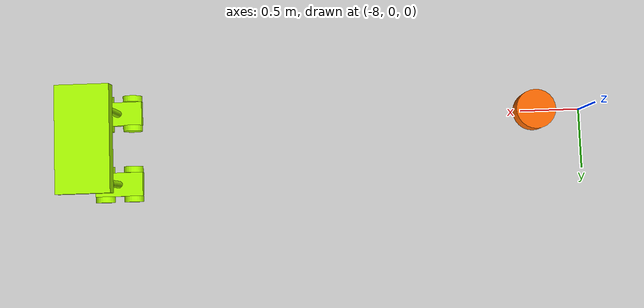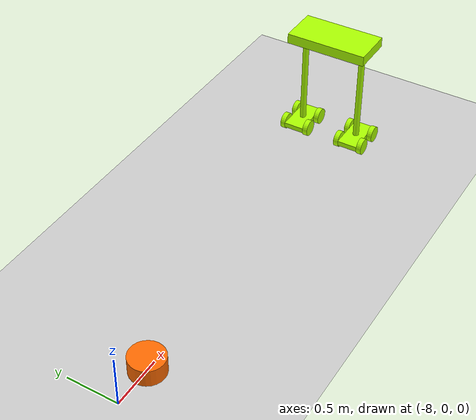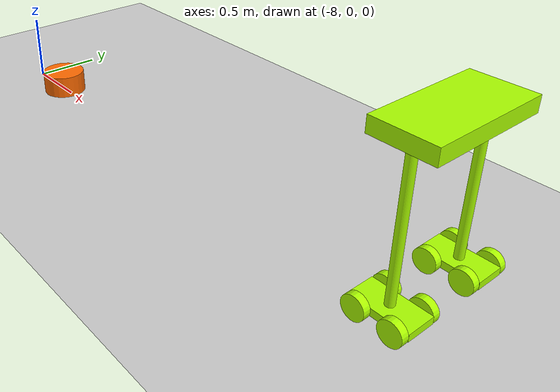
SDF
<sdf version="1.6">
 <world name="default">
  <model name="ground_plane">
   <static>1</static>
   <link name="link">
    <collision name="collision">
     <geometry><plane><normal>0 0 1</normal><size>100 100</size></plane></geometry>
     <surface><friction><ode><mu>100</mu><mu2>50</mu2></ode></friction></surface>
    </collision>
    <visual name="visual">
     <cast_shadows>0</cast_shadows>
     <geometry><plane><normal>0 0 1</normal><size>100 100</size></plane></geometry>
     <material>
      <script><uri>file://media/materials/scripts/gazebo.material</uri><name>Gazebo/Grey</name></script>
     </material>
    </visual>
   </link>
  </model>
  <model name="cylinder_or">
   <link name="link_0">
    <inertial>
     <mass>1</mass>
     <inertia><ixx>0.145833</ixx><ixy>0</ixy><ixz>0</ixz><iyy>0.145833</iyy><iyz>0</iyz><izz>0.125</izz></inertia>
    </inertial>
    <visual name="visual">
     <geometry><cylinder><radius>0.166667</radius><length>0.333333</length></cylinder></geometry>
     <material>
      <lighting>1</lighting>
      <script><uri>file://media/materials/scripts/gazebo.material</uri><name>Gazebo/Grey</name></script>
      <ambient>1 0.416 0 1</ambient>
      <diffuse>1 0.416 0 1</diffuse>
      <specular>0 0 0 1</specular>
      <emissive>0 0 0 1</emissive>
      <shader type="vertex"><normal_map>__default__</normal_map></shader>
     </material>
    </visual>
    <collision name="collision">
     <geometry><cylinder><radius>0.166667</radius><length>0.333333</length></cylinder></geometry>
     <surface>
      <friction>
       <ode><mu>1</mu><mu2>1</mu2><fdir1>0 0 0</fdir1><slip1>0</slip1><slip2>0</slip2></ode>
       <torsional>
        <coefficient>1</coefficient>
        <patch_radius>0</patch_radius>
        <surface_radius>0</surface_radius>
        <use_patch_radius>1</use_patch_radius>
        <ode><slip>0</slip></ode>
       </torsional>
      </friction>
      <bounce><restitution_coefficient>0</restitution_coefficient><threshold>1e+06</threshold></bounce>
      <contact>
       <collide_without_contact>0</collide_without_contact>
       <collide_without_contact_bitmask>1</collide_without_contact_bitmask>
       <collide_bitmask>1</collide_bitmask>
       <ode>
        <soft_cfm>0</soft_cfm>
        <soft_erp>0.2</soft_erp>
        <kp>1e+13</kp>
        <kd>1</kd>
        <max_vel>0.01</max_vel>
        <min_depth>0</min_depth>
       </ode>
       <bullet>
        <split_impulse>1</split_impulse>
        <split_impulse_penetration_threshold>-0.01</split_impulse_penetration_threshold>
        <soft_cfm>0</soft_cfm>
        <soft_erp>0.2</soft_erp>
        <kp>1e+13</kp>
        <kd>1</kd>
       </bullet>
      </contact>
     </surface>
    </collision>
   </link>
   <static>1</static>
   <pose>-7.6 0 0 0 -0 0</pose>
  </model>
  <model name="myRobot">
   <link name="link_0">
    <pose>0 -0.3 -0.151923 0 -0 0</pose>
    <inertial>
     <mass>1</mass>
     <inertia>
      <ixx>0.166667</ixx>
      <ixy>0</ixy>
      <ixz>0</ixz>
      <iyy>0.166667</iyy>
      <iyz>0</iyz>
      <izz>0.166667</izz>
     </inertia>
    </inertial>
    <visual name="visual">
     <geometry><box><size>0.4 0.2 0.05</size></box></geometry>
     <material>
      <lighting>1</lighting>
      <script><uri>file://media/materials/scripts/gazebo.material</uri><name>Gazebo/Grey</name></script>
      <ambient>0.675 1 0 1</ambient>
      <diffuse>0.675 1 0 1</diffuse>
      <specular>0.01 0.01 0.01 1</specular>
      <emissive>0 0 0 1</emissive>
      <shader type="vertex"><normal_map>__default__</normal_map></shader>
     </material>
    </visual>
    <collision name="collision">
     <geometry><box><size>0.4 0.2 0.05</size></box></geometry>
     <surface>
      <friction>
       <ode><mu>1</mu><mu2>1</mu2><fdir1>0 0 0</fdir1><slip1>0</slip1><slip2>0</slip2></ode>
       <torsional>
        <coefficient>1</coefficient>
        <patch_radius>0</patch_radius>
        <surface_radius>0</surface_radius>
        <use_patch_radius>1</use_patch_radius>
        <ode><slip>0</slip></ode>
       </torsional>
      </friction>
      <bounce><restitution_coefficient>0</restitution_coefficient><threshold>1e+06</threshold></bounce>
      <contact>
       <collide_without_contact>0</collide_without_contact>
       <collide_without_contact_bitmask>1</collide_without_contact_bitmask>
       <collide_bitmask>1</collide_bitmask>
       <ode>
        <soft_cfm>0</soft_cfm>
        <soft_erp>0.2</soft_erp>
        <kp>1e+13</kp>
        <kd>1</kd>
        <max_vel>0.01</max_vel>
        <min_depth>0</min_depth>
       </ode>
       <bullet>
        <split_impulse>1</split_impulse>
        <split_impulse_penetration_threshold>-0.01</split_impulse_penetration_threshold>
        <soft_cfm>0</soft_cfm>
        <soft_erp>0.2</soft_erp>
        <kp>1e+13</kp>
        <kd>1</kd>
       </bullet>
      </contact>
     </surface>
    </collision>
   </link>
   <link name="link_0_clone">
    <pose>0 0.3 -0.151923 0 -0 0</pose>
    <inertial>
     <mass>1</mass>
     <inertia>
      <ixx>0.166667</ixx>
      <ixy>0</ixy>
      <ixz>0</ixz>
      <iyy>0.166667</iyy>
      <iyz>0</iyz>
      <izz>0.166667</izz>
     </inertia>
    </inertial>
    <visual name="visual">
     <geometry><box><size>0.4 0.2 0.05</size></box></geometry>
     <material>
      <lighting>1</lighting>
      <script><uri>file://media/materials/scripts/gazebo.material</uri><name>Gazebo/Grey</name></script>
      <ambient>0.675 1 0 1</ambient>
      <diffuse>0.675 1 0 1</diffuse>
      <specular>0.01 0.01 0.01 1</specular>
      <emissive>0 0 0 1</emissive>
      <shader type="vertex"><normal_map>__default__</normal_map></shader>
     </material>
    </visual>
    <collision name="collision">
     <geometry><box><size>0.4 0.2 0.05</size></box></geometry>
     <surface>
      <friction>
       <ode><mu>1</mu><mu2>1</mu2><fdir1>0 0 0</fdir1><slip1>0</slip1><slip2>0</slip2></ode>
       <torsional>
        <coefficient>1</coefficient>
        <patch_radius>0</patch_radius>
        <surface_radius>0</surface_radius>
        <use_patch_radius>1</use_patch_radius>
        <ode><slip>0</slip></ode>
       </torsional>
      </friction>
      <bounce><restitution_coefficient>0</restitution_coefficient><threshold>1e+06</threshold></bounce>
      <contact>
       <collide_without_contact>0</collide_without_contact>
       <collide_without_contact_bitmask>1</collide_without_contact_bitmask>
       <collide_bitmask>1</collide_bitmask>
       <ode>
        <soft_cfm>0</soft_cfm>
        <soft_erp>0.2</soft_erp>
        <kp>1e+13</kp>
        <kd>1</kd>
        <max_vel>0.01</max_vel>
        <min_depth>0</min_depth>
       </ode>
       <bullet>
        <split_impulse>1</split_impulse>
        <split_impulse_penetration_threshold>-0.01</split_impulse_penetration_threshold>
        <soft_cfm>0</soft_cfm>
        <soft_erp>0.2</soft_erp>
        <kp>1e+13</kp>
        <kd>1</kd>
       </bullet>
      </contact>
     </surface>
    </collision>
   </link>
   <link name="link_1">
    <pose>0 -0.3 0.323077 0 -0 0</pose>
    <inertial>
     <mass>1</mass>
     <inertia><ixx>0.145833</ixx><ixy>0</ixy><ixz>0</ixz><iyy>0.145833</iyy><iyz>0</iyz><izz>0.125</izz></inertia>
    </inertial>
    <visual name="visual">
     <geometry><cylinder><radius>0.03</radius><length>1</length></cylinder></geometry>
     <material>
      <lighting>1</lighting>
      <script><uri>file://media/materials/scripts/gazebo.material</uri><name>Gazebo/Grey</name></script>
      <ambient>0.675 1 0 1</ambient>
      <diffuse>0.675 1 0 1</diffuse>
      <specular>0.01 0.01 0.01 1</specular>
      <emissive>0 0 0 1</emissive>
      <shader type="vertex"><normal_map>__default__</normal_map></shader>
     </material>
    </visual>
    <collision name="collision">
     <geometry><cylinder><radius>0.03</radius><length>1</length></cylinder></geometry>
     <surface>
      <friction>
       <ode><mu>1</mu><mu2>1</mu2><fdir1>0 0 0</fdir1><slip1>0</slip1><slip2>0</slip2></ode>
       <torsional>
        <coefficient>1</coefficient>
        <patch_radius>0</patch_radius>
        <surface_radius>0</surface_radius>
        <use_patch_radius>1</use_patch_radius>
        <ode><slip>0</slip></ode>
       </torsional>
      </friction>
      <bounce><restitution_coefficient>0</restitution_coefficient><threshold>1e+06</threshold></bounce>
      <contact>
       <collide_without_contact>0</collide_without_contact>
       <collide_without_contact_bitmask>1</collide_without_contact_bitmask>
       <collide_bitmask>1</collide_bitmask>
       <ode>
        <soft_cfm>0</soft_cfm>
        <soft_erp>0.2</soft_erp>
        <kp>1e+13</kp>
        <kd>1</kd>
        <max_vel>0.01</max_vel>
        <min_depth>0</min_depth>
       </ode>
       <bullet>
        <split_impulse>1</split_impulse>
        <split_impulse_penetration_threshold>-0.01</split_impulse_penetration_threshold>
        <soft_cfm>0</soft_cfm>
        <soft_erp>0.2</soft_erp>
        <kp>1e+13</kp>
        <kd>1</kd>
       </bullet>
      </contact>
     </surface>
    </collision>
   </link>
   <link name="link_1_clone">
    <pose>0 0.3 0.323077 0 -0 0</pose>
    <inertial>
     <mass>1</mass>
     <inertia><ixx>0.145833</ixx><ixy>0</ixy><ixz>0</ixz><iyy>0.145833</iyy><iyz>0</iyz><izz>0.125</izz></inertia>
    </inertial>
    <visual name="visual">
     <geometry><cylinder><radius>0.03</radius><length>1</length></cylinder></geometry>
     <material>
      <lighting>1</lighting>
      <script><uri>file://media/materials/scripts/gazebo.material</uri><name>Gazebo/Grey</name></script>
      <ambient>0.675 1 0 1</ambient>
      <diffuse>0.675 1 0 1</diffuse>
      <specular>0.01 0.01 0.01 1</specular>
      <emissive>0 0 0 1</emissive>
      <shader type="vertex"><normal_map>__default__</normal_map></shader>
     </material>
    </visual>
    <collision name="collision">
     <geometry><cylinder><radius>0.03</radius><length>1</length></cylinder></geometry>
     <surface>
      <friction>
       <ode><mu>1</mu><mu2>1</mu2><fdir1>0 0 0</fdir1><slip1>0</slip1><slip2>0</slip2></ode>
       <torsional>
        <coefficient>1</coefficient>
        <patch_radius>0</patch_radius>
        <surface_radius>0</surface_radius>
        <use_patch_radius>1</use_patch_radius>
        <ode><slip>0</slip></ode>
       </torsional>
      </friction>
      <bounce><restitution_coefficient>0</restitution_coefficient><threshold>1e+06</threshold></bounce>
      <contact>
       <collide_without_contact>0</collide_without_contact>
       <collide_without_contact_bitmask>1</collide_without_contact_bitmask>
       <collide_bitmask>1</collide_bitmask>
       <ode>
        <soft_cfm>0</soft_cfm>
        <soft_erp>0.2</soft_erp>
        <kp>1e+13</kp>
        <kd>1</kd>
        <max_vel>0.01</max_vel>
        <min_depth>0</min_depth>
       </ode>
       <bullet>
        <split_impulse>1</split_impulse>
        <split_impulse_penetration_threshold>-0.01</split_impulse_penetration_threshold>
        <soft_cfm>0</soft_cfm>
        <soft_erp>0.2</soft_erp>
        <kp>1e+13</kp>
        <kd>1</kd>
       </bullet>
      </contact>
     </surface>
    </collision>
   </link>
   <link name="link_2">
    <pose>0 -0 0.873077 0 -0 0</pose>
    <inertial>
     <mass>1</mass>
     <inertia>
      <ixx>0.166667</ixx>
      <ixy>0</ixy>
      <ixz>0</ixz>
      <iyy>0.166667</iyy>
      <iyz>0</iyz>
      <izz>0.166667</izz>
     </inertia>
    </inertial>
    <visual name="visual">
     <geometry><box><size>0.4 0.8 0.1</size></box></geometry>
     <material>
      <lighting>1</lighting>
      <script><uri>file://media/materials/scripts/gazebo.material</uri><name>Gazebo/Grey</name></script>
      <ambient>0.675 1 0 1</ambient>
      <diffuse>0.675 1 0 1</diffuse>
      <specular>0.01 0.01 0.01 1</specular>
      <emissive>0 0 0 1</emissive>
      <shader type="vertex"><normal_map>__default__</normal_map></shader>
     </material>
    </visual>
    <collision name="collision">
     <geometry><box><size>0.4 0.8 0.1</size></box></geometry>
     <surface>
      <friction>
       <ode><mu>1</mu><mu2>1</mu2><fdir1>0 0 0</fdir1><slip1>0</slip1><slip2>0</slip2></ode>
       <torsional>
        <coefficient>1</coefficient>
        <patch_radius>0</patch_radius>
        <surface_radius>0</surface_radius>
        <use_patch_radius>1</use_patch_radius>
        <ode><slip>0</slip></ode>
       </torsional>
      </friction>
      <bounce><restitution_coefficient>0</restitution_coefficient><threshold>1e+06</threshold></bounce>
      <contact>
       <collide_without_contact>0</collide_without_contact>
       <collide_without_contact_bitmask>1</collide_without_contact_bitmask>
       <collide_bitmask>1</collide_bitmask>
       <ode>
        <soft_cfm>0</soft_cfm>
        <soft_erp>0.2</soft_erp>
        <kp>1e+13</kp>
        <kd>1</kd>
        <max_vel>0.01</max_vel>
        <min_depth>0</min_depth>
       </ode>
       <bullet>
        <split_impulse>1</split_impulse>
        <split_impulse_penetration_threshold>-0.01</split_impulse_penetration_threshold>
        <soft_cfm>0</soft_cfm>
        <soft_erp>0.2</soft_erp>
        <kp>1e+13</kp>
        <kd>1</kd>
       </bullet>
      </contact>
     </surface>
    </collision>
   </link>
   <link name="link_3">
    <pose>-0.12 -0.425 -0.151923 1.5707 -0 0</pose>
    <inertial>
     <mass>1</mass>
     <inertia><ixx>0.145833</ixx><ixy>0</ixy><ixz>0</ixz><iyy>0.145833</iyy><iyz>0</iyz><izz>0.125</izz></inertia>
    </inertial>
    <visual name="visual">
     <geometry><cylinder><radius>0.08</radius><length>0.05</length></cylinder></geometry>
     <material>
      <lighting>1</lighting>
      <script><uri>file://media/materials/scripts/gazebo.material</uri><name>Gazebo/Grey</name></script>
      <ambient>0.675 1 0 1</ambient>
      <diffuse>0.675 1 0 1</diffuse>
      <specular>0.01 0.01 0.01 1</specular>
      <emissive>0 0 0 1</emissive>
      <shader type="vertex"><normal_map>__default__</normal_map></shader>
     </material>
    </visual>
    <collision name="collision">
     <geometry><cylinder><radius>0.08</radius><length>0.05</length></cylinder></geometry>
     <surface>
      <friction>
       <ode><mu>1</mu><mu2>1</mu2><fdir1>0 0 0</fdir1><slip1>0</slip1><slip2>0</slip2></ode>
       <torsional>
        <coefficient>1</coefficient>
        <patch_radius>0</patch_radius>
        <surface_radius>0</surface_radius>
        <use_patch_radius>1</use_patch_radius>
        <ode><slip>0</slip></ode>
       </torsional>
      </friction>
      <bounce><restitution_coefficient>0</restitution_coefficient><threshold>1e+06</threshold></bounce>
      <contact>
       <collide_without_contact>0</collide_without_contact>
       <collide_without_contact_bitmask>1</collide_without_contact_bitmask>
       <collide_bitmask>1</collide_bitmask>
       <ode>
        <soft_cfm>0</soft_cfm>
        <soft_erp>0.2</soft_erp>
        <kp>1e+13</kp>
        <kd>1</kd>
        <max_vel>0.01</max_vel>
        <min_depth>0</min_depth>
       </ode>
       <bullet>
        <split_impulse>1</split_impulse>
        <split_impulse_penetration_threshold>-0.01</split_impulse_penetration_threshold>
        <soft_cfm>0</soft_cfm>
        <soft_erp>0.2</soft_erp>
        <kp>1e+13</kp>
        <kd>1</kd>
       </bullet>
      </contact>
     </surface>
    </collision>
   </link>
   <link name="link_3_clone">
    <pose>0.12 -0.425 -0.151923 1.5707 -0 0</pose>
    <inertial>
     <mass>1</mass>
     <inertia><ixx>0.145833</ixx><ixy>0</ixy><ixz>0</ixz><iyy>0.145833</iyy><iyz>0</iyz><izz>0.125</izz></inertia>
    </inertial>
    <visual name="visual">
     <geometry><cylinder><radius>0.08</radius><length>0.05</length></cylinder></geometry>
     <material>
      <lighting>1</lighting>
      <script><uri>file://media/materials/scripts/gazebo.material</uri><name>Gazebo/Grey</name></script>
      <ambient>0.675 1 0 1</ambient>
      <diffuse>0.675 1 0 1</diffuse>
      <specular>0.01 0.01 0.01 1</specular>
      <emissive>0 0 0 1</emissive>
      <shader type="vertex"><normal_map>__default__</normal_map></shader>
     </material>
    </visual>
    <collision name="collision">
     <geometry><cylinder><radius>0.08</radius><length>0.05</length></cylinder></geometry>
     <surface>
      <friction>
       <ode><mu>1</mu><mu2>1</mu2><fdir1>0 0 0</fdir1><slip1>0</slip1><slip2>0</slip2></ode>
       <torsional>
        <coefficient>1</coefficient>
        <patch_radius>0</patch_radius>
        <surface_radius>0</surface_radius>
        <use_patch_radius>1</use_patch_radius>
        <ode><slip>0</slip></ode>
       </torsional>
      </friction>
      <bounce><restitution_coefficient>0</restitution_coefficient><threshold>1e+06</threshold></bounce>
      <contact>
       <collide_without_contact>0</collide_without_contact>
       <collide_without_contact_bitmask>1</collide_without_contact_bitmask>
       <collide_bitmask>1</collide_bitmask>
       <ode>
        <soft_cfm>0</soft_cfm>
        <soft_erp>0.2</soft_erp>
        <kp>1e+13</kp>
        <kd>1</kd>
        <max_vel>0.01</max_vel>
        <min_depth>0</min_depth>
       </ode>
       <bullet>
        <split_impulse>1</split_impulse>
        <split_impulse_penetration_threshold>-0.01</split_impulse_penetration_threshold>
        <soft_cfm>0</soft_cfm>
        <soft_erp>0.2</soft_erp>
        <kp>1e+13</kp>
        <kd>1</kd>
       </bullet>
      </contact>
     </surface>
    </collision>
   </link>
   <link name="link_3_clone_0">
    <pose>-0.12 -0.175 -0.151923 1.5707 -0 0</pose>
    <inertial>
     <mass>1</mass>
     <inertia><ixx>0.145833</ixx><ixy>0</ixy><ixz>0</ixz><iyy>0.145833</iyy><iyz>0</iyz><izz>0.125</izz></inertia>
    </inertial>
    <visual name="visual">
     <geometry><cylinder><radius>0.08</radius><length>0.05</length></cylinder></geometry>
     <material>
      <lighting>1</lighting>
      <script><uri>file://media/materials/scripts/gazebo.material</uri><name>Gazebo/Grey</name></script>
      <ambient>0.675 1 0 1</ambient>
      <diffuse>0.675 1 0 1</diffuse>
      <specular>0.01 0.01 0.01 1</specular>
      <emissive>0 0 0 1</emissive>
      <shader type="vertex"><normal_map>__default__</normal_map></shader>
     </material>
    </visual>
    <collision name="collision">
     <geometry><cylinder><radius>0.08</radius><length>0.05</length></cylinder></geometry>
     <surface>
      <friction>
       <ode><mu>1</mu><mu2>1</mu2><fdir1>0 0 0</fdir1><slip1>0</slip1><slip2>0</slip2></ode>
       <torsional>
        <coefficient>1</coefficient>
        <patch_radius>0</patch_radius>
        <surface_radius>0</surface_radius>
        <use_patch_radius>1</use_patch_radius>
        <ode><slip>0</slip></ode>
       </torsional>
      </friction>
      <bounce><restitution_coefficient>0</restitution_coefficient><threshold>1e+06</threshold></bounce>
      <contact>
       <collide_without_contact>0</collide_without_contact>
       <collide_without_contact_bitmask>1</collide_without_contact_bitmask>
       <collide_bitmask>1</collide_bitmask>
       <ode>
        <soft_cfm>0</soft_cfm>
        <soft_erp>0.2</soft_erp>
        <kp>1e+13</kp>
        <kd>1</kd>
        <max_vel>0.01</max_vel>
        <min_depth>0</min_depth>
       </ode>
       <bullet>
        <split_impulse>1</split_impulse>
        <split_impulse_penetration_threshold>-0.01</split_impulse_penetration_threshold>
        <soft_cfm>0</soft_cfm>
        <soft_erp>0.2</soft_erp>
        <kp>1e+13</kp>
        <kd>1</kd>
       </bullet>
      </contact>
     </surface>
    </collision>
   </link>
   <link name="link_3_clone_1">
    <pose>0.12 -0.175 -0.151923 1.5707 -0 0</pose>
    <inertial>
     <mass>1</mass>
     <inertia><ixx>0.145833</ixx><ixy>0</ixy><ixz>0</ixz><iyy>0.145833</iyy><iyz>0</iyz><izz>0.125</izz></inertia>
    </inertial>
    <visual name="visual">
     <geometry><cylinder><radius>0.08</radius><length>0.05</length></cylinder></geometry>
     <material>
      <lighting>1</lighting>
      <script><uri>file://media/materials/scripts/gazebo.material</uri><name>Gazebo/Grey</name></script>
      <ambient>0.675 1 0 1</ambient>
      <diffuse>0.675 1 0 1</diffuse>
      <specular>0.01 0.01 0.01 1</specular>
      <emissive>0 0 0 1</emissive>
      <shader type="vertex"><normal_map>__default__</normal_map></shader>
     </material>
    </visual>
    <collision name="collision">
     <geometry><cylinder><radius>0.08</radius><length>0.05</length></cylinder></geometry>
     <surface>
      <friction>
       <ode><mu>1</mu><mu2>1</mu2><fdir1>0 0 0</fdir1><slip1>0</slip1><slip2>0</slip2></ode>
       <torsional>
        <coefficient>1</coefficient>
        <patch_radius>0</patch_radius>
        <surface_radius>0</surface_radius>
        <use_patch_radius>1</use_patch_radius>
        <ode><slip>0</slip></ode>
       </torsional>
      </friction>
      <bounce><restitution_coefficient>0</restitution_coefficient><threshold>1e+06</threshold></bounce>
      <contact>
       <collide_without_contact>0</collide_without_contact>
       <collide_without_contact_bitmask>1</collide_without_contact_bitmask>
       <collide_bitmask>1</collide_bitmask>
       <ode>
        <soft_cfm>0</soft_cfm>
        <soft_erp>0.2</soft_erp>
        <kp>1e+13</kp>
        <kd>1</kd>
        <max_vel>0.01</max_vel>
        <min_depth>0</min_depth>
       </ode>
       <bullet>
        <split_impulse>1</split_impulse>
        <split_impulse_penetration_threshold>-0.01</split_impulse_penetration_threshold>
        <soft_cfm>0</soft_cfm>
        <soft_erp>0.2</soft_erp>
        <kp>1e+13</kp>
        <kd>1</kd>
       </bullet>
      </contact>
     </surface>
    </collision>
   </link>
   <link name="link_3_clone_2">
    <pose>-0.12 0.175 -0.151923 1.5707 -0 0</pose>
    <inertial>
     <mass>1</mass>
     <inertia><ixx>0.145833</ixx><ixy>0</ixy><ixz>0</ixz><iyy>0.145833</iyy><iyz>0</iyz><izz>0.125</izz></inertia>
    </inertial>
    <visual name="visual">
     <geometry><cylinder><radius>0.08</radius><length>0.05</length></cylinder></geometry>
     <material>
      <lighting>1</lighting>
      <script><uri>file://media/materials/scripts/gazebo.material</uri><name>Gazebo/Grey</name></script>
      <ambient>0.675 1 0 1</ambient>
      <diffuse>0.675 1 0 1</diffuse>
      <specular>0.01 0.01 0.01 1</specular>
      <emissive>0 0 0 1</emissive>
      <shader type="vertex"><normal_map>__default__</normal_map></shader>
     </material>
    </visual>
    <collision name="collision">
     <geometry><cylinder><radius>0.08</radius><length>0.05</length></cylinder></geometry>
     <surface>
      <friction>
       <ode><mu>1</mu><mu2>1</mu2><fdir1>0 0 0</fdir1><slip1>0</slip1><slip2>0</slip2></ode>
       <torsional>
        <coefficient>1</coefficient>
        <patch_radius>0</patch_radius>
        <surface_radius>0</surface_radius>
        <use_patch_radius>1</use_patch_radius>
        <ode><slip>0</slip></ode>
       </torsional>
      </friction>
      <bounce><restitution_coefficient>0</restitution_coefficient><threshold>1e+06</threshold></bounce>
      <contact>
       <collide_without_contact>0</collide_without_contact>
       <collide_without_contact_bitmask>1</collide_without_contact_bitmask>
       <collide_bitmask>1</collide_bitmask>
       <ode>
        <soft_cfm>0</soft_cfm>
        <soft_erp>0.2</soft_erp>
        <kp>1e+13</kp>
        <kd>1</kd>
        <max_vel>0.01</max_vel>
        <min_depth>0</min_depth>
       </ode>
       <bullet>
        <split_impulse>1</split_impulse>
        <split_impulse_penetration_threshold>-0.01</split_impulse_penetration_threshold>
        <soft_cfm>0</soft_cfm>
        <soft_erp>0.2</soft_erp>
        <kp>1e+13</kp>
        <kd>1</kd>
       </bullet>
      </contact>
     </surface>
    </collision>
   </link>
   <link name="link_3_clone_3">
    <pose>0.12 0.175 -0.151923 1.5707 -0 0</pose>
    <inertial>
     <mass>1</mass>
     <inertia><ixx>0.145833</ixx><ixy>0</ixy><ixz>0</ixz><iyy>0.145833</iyy><iyz>0</iyz><izz>0.125</izz></inertia>
    </inertial>
    <visual name="visual">
     <geometry><cylinder><radius>0.08</radius><length>0.05</length></cylinder></geometry>
     <material>
      <lighting>1</lighting>
      <script><uri>file://media/materials/scripts/gazebo.material</uri><name>Gazebo/Grey</name></script>
      <ambient>0.675 1 0 1</ambient>
      <diffuse>0.675 1 0 1</diffuse>
      <specular>0.01 0.01 0.01 1</specular>
      <emissive>0 0 0 1</emissive>
      <shader type="vertex"><normal_map>__default__</normal_map></shader>
     </material>
    </visual>
    <collision name="collision">
     <geometry><cylinder><radius>0.08</radius><length>0.05</length></cylinder></geometry>
     <surface>
      <friction>
       <ode><mu>1</mu><mu2>1</mu2><fdir1>0 0 0</fdir1><slip1>0</slip1><slip2>0</slip2></ode>
       <torsional>
        <coefficient>1</coefficient>
        <patch_radius>0</patch_radius>
        <surface_radius>0</surface_radius>
        <use_patch_radius>1</use_patch_radius>
        <ode><slip>0</slip></ode>
       </torsional>
      </friction>
      <bounce><restitution_coefficient>0</restitution_coefficient><threshold>1e+06</threshold></bounce>
      <contact>
       <collide_without_contact>0</collide_without_contact>
       <collide_without_contact_bitmask>1</collide_without_contact_bitmask>
       <collide_bitmask>1</collide_bitmask>
       <ode>
        <soft_cfm>0</soft_cfm>
        <soft_erp>0.2</soft_erp>
        <kp>1e+13</kp>
        <kd>1</kd>
        <max_vel>0.01</max_vel>
        <min_depth>0</min_depth>
       </ode>
       <bullet>
        <split_impulse>1</split_impulse>
        <split_impulse_penetration_threshold>-0.01</split_impulse_penetration_threshold>
        <soft_cfm>0</soft_cfm>
        <soft_erp>0.2</soft_erp>
        <kp>1e+13</kp>
        <kd>1</kd>
       </bullet>
      </contact>
     </surface>
    </collision>
   </link>
   <link name="link_3_clone_4">
    <pose>-0.12 0.425 -0.151923 1.5707 -0 0</pose>
    <inertial>
     <mass>1</mass>
     <inertia><ixx>0.145833</ixx><ixy>0</ixy><ixz>0</ixz><iyy>0.145833</iyy><iyz>0</iyz><izz>0.125</izz></inertia>
    </inertial>
    <visual name="visual">
     <geometry><cylinder><radius>0.08</radius><length>0.05</length></cylinder></geometry>
     <material>
      <lighting>1</lighting>
      <script><uri>file://media/materials/scripts/gazebo.material</uri><name>Gazebo/Grey</name></script>
      <ambient>0.675 1 0 1</ambient>
      <diffuse>0.675 1 0 1</diffuse>
      <specular>0.01 0.01 0.01 1</specular>
      <emissive>0 0 0 1</emissive>
      <shader type="vertex"><normal_map>__default__</normal_map></shader>
     </material>
    </visual>
    <collision name="collision">
     <geometry><cylinder><radius>0.08</radius><length>0.05</length></cylinder></geometry>
     <surface>
      <friction>
       <ode><mu>1</mu><mu2>1</mu2><fdir1>0 0 0</fdir1><slip1>0</slip1><slip2>0</slip2></ode>
       <torsional>
        <coefficient>1</coefficient>
        <patch_radius>0</patch_radius>
        <surface_radius>0</surface_radius>
        <use_patch_radius>1</use_patch_radius>
        <ode><slip>0</slip></ode>
       </torsional>
      </friction>
      <bounce><restitution_coefficient>0</restitution_coefficient><threshold>1e+06</threshold></bounce>
      <contact>
       <collide_without_contact>0</collide_without_contact>
       <collide_without_contact_bitmask>1</collide_without_contact_bitmask>
       <collide_bitmask>1</collide_bitmask>
       <ode>
        <soft_cfm>0</soft_cfm>
        <soft_erp>0.2</soft_erp>
        <kp>1e+13</kp>
        <kd>1</kd>
        <max_vel>0.01</max_vel>
        <min_depth>0</min_depth>
       </ode>
       <bullet>
        <split_impulse>1</split_impulse>
        <split_impulse_penetration_threshold>-0.01</split_impulse_penetration_threshold>
        <soft_cfm>0</soft_cfm>
        <soft_erp>0.2</soft_erp>
        <kp>1e+13</kp>
        <kd>1</kd>
       </bullet>
      </contact>
     </surface>
    </collision>
   </link>
   <link name="link_3_clone_5">
    <pose>0.12 0.425 -0.151923 1.5707 -0 0</pose>
    <inertial>
     <mass>1</mass>
     <inertia><ixx>0.145833</ixx><ixy>0</ixy><ixz>0</ixz><iyy>0.145833</iyy><iyz>0</iyz><izz>0.125</izz></inertia>
    </inertial>
    <visual name="visual">
     <geometry><cylinder><radius>0.08</radius><length>0.05</length></cylinder></geometry>
     <material>
      <lighting>1</lighting>
      <script><uri>file://media/materials/scripts/gazebo.material</uri><name>Gazebo/Grey</name></script>
      <ambient>0.675 1 0 1</ambient>
      <diffuse>0.675 1 0 1</diffuse>
      <specular>0.01 0.01 0.01 1</specular>
      <emissive>0 0 0 1</emissive>
      <shader type="vertex"><normal_map>__default__</normal_map></shader>
     </material>
    </visual>
    <collision name="collision">
     <geometry><cylinder><radius>0.08</radius><length>0.05</length></cylinder></geometry>
     <surface>
      <friction>
       <ode><mu>1</mu><mu2>1</mu2><fdir1>0 0 0</fdir1><slip1>0</slip1><slip2>0</slip2></ode>
       <torsional>
        <coefficient>1</coefficient>
        <patch_radius>0</patch_radius>
        <surface_radius>0</surface_radius>
        <use_patch_radius>1</use_patch_radius>
        <ode><slip>0</slip></ode>
       </torsional>
      </friction>
      <bounce><restitution_coefficient>0</restitution_coefficient><threshold>1e+06</threshold></bounce>
      <contact>
       <collide_without_contact>0</collide_without_contact>
       <collide_without_contact_bitmask>1</collide_without_contact_bitmask>
       <collide_bitmask>1</collide_bitmask>
       <ode>
        <soft_cfm>0</soft_cfm>
        <soft_erp>0.2</soft_erp>
        <kp>1e+13</kp>
        <kd>1</kd>
        <max_vel>0.01</max_vel>
        <min_depth>0</min_depth>
       </ode>
       <bullet>
        <split_impulse>1</split_impulse>
        <split_impulse_penetration_threshold>-0.01</split_impulse_penetration_threshold>
        <soft_cfm>0</soft_cfm>
        <soft_erp>0.2</soft_erp>
        <kp>1e+13</kp>
        <kd>1</kd>
       </bullet>
      </contact>
     </surface>
    </collision>
   </link>
   <joint name="link_0_JOINT_0" type="fixed">
    <parent>link_0</parent>
    <child>link_1</child>
    <physics>
     <ode><limit><cfm>0</cfm><erp>0.2</erp></limit><suspension><cfm>0</cfm><erp>0.2</erp></suspension></ode>
    </physics>
   </joint>
   <joint name="link_0_JOINT_4" type="revolute">
    <parent>link_0</parent>
    <child>link_3</child>
    <axis>
     <xyz>0 0 1</xyz>
     <use_parent_model_frame>0</use_parent_model_frame>
     <limit>
      <lower>-1.79769e+308</lower>
      <upper>1.79769e+308</upper>
      <effort>-1</effort>
      <velocity>-1</velocity>
     </limit>
     <dynamics>
      <spring_reference>0</spring_reference>
      <spring_stiffness>0</spring_stiffness>
      <damping>0</damping>
     </dynamics>
    </axis>
    <physics>
     <ode><limit><cfm>0</cfm><erp>0.2</erp></limit><suspension><cfm>0</cfm><erp>0.2</erp></suspension></ode>
    </physics>
   </joint>
   <joint name="link_0_JOINT_5" type="revolute">
    <parent>link_0</parent>
    <child>link_3_clone</child>
    <axis>
     <xyz>0 0 1</xyz>
     <use_parent_model_frame>0</use_parent_model_frame>
     <limit>
      <lower>-1.79769e+308</lower>
      <upper>1.79769e+308</upper>
      <effort>-1</effort>
      <velocity>-1</velocity>
     </limit>
     <dynamics>
      <spring_reference>0</spring_reference>
      <spring_stiffness>0</spring_stiffness>
      <damping>0</damping>
     </dynamics>
    </axis>
    <physics>
     <ode><limit><cfm>0</cfm><erp>0.2</erp></limit><suspension><cfm>0</cfm><erp>0.2</erp></suspension></ode>
    </physics>
   </joint>
   <joint name="link_0_JOINT_6" type="revolute">
    <parent>link_0</parent>
    <child>link_3_clone_0</child>
    <axis>
     <xyz>0 0 1</xyz>
     <use_parent_model_frame>0</use_parent_model_frame>
     <limit>
      <lower>-1.79769e+308</lower>
      <upper>1.79769e+308</upper>
      <effort>-1</effort>
      <velocity>-1</velocity>
     </limit>
     <dynamics>
      <spring_reference>0</spring_reference>
      <spring_stiffness>0</spring_stiffness>
      <damping>0</damping>
     </dynamics>
    </axis>
    <physics>
     <ode><limit><cfm>0</cfm><erp>0.2</erp></limit><suspension><cfm>0</cfm><erp>0.2</erp></suspension></ode>
    </physics>
   </joint>
   <joint name="link_0_JOINT_7" type="revolute">
    <parent>link_0</parent>
    <child>link_3_clone_1</child>
    <axis>
     <xyz>0 0 1</xyz>
     <use_parent_model_frame>0</use_parent_model_frame>
     <limit>
      <lower>-1.79769e+308</lower>
      <upper>1.79769e+308</upper>
      <effort>-1</effort>
      <velocity>-1</velocity>
     </limit>
     <dynamics>
      <spring_reference>0</spring_reference>
      <spring_stiffness>0</spring_stiffness>
      <damping>0</damping>
     </dynamics>
    </axis>
    <physics>
     <ode><limit><cfm>0</cfm><erp>0.2</erp></limit><suspension><cfm>0</cfm><erp>0.2</erp></suspension></ode>
    </physics>
   </joint>
   <joint name="link_0_clone_JOINT_10" type="revolute">
    <parent>link_0_clone</parent>
    <child>link_3_clone_4</child>
    <axis>
     <xyz>0 0 1</xyz>
     <use_parent_model_frame>0</use_parent_model_frame>
     <limit>
      <lower>-1.79769e+308</lower>
      <upper>1.79769e+308</upper>
      <effort>-1</effort>
      <velocity>-1</velocity>
     </limit>
     <dynamics>
      <spring_reference>0</spring_reference>
      <spring_stiffness>0</spring_stiffness>
      <damping>0</damping>
     </dynamics>
    </axis>
    <physics>
     <ode><limit><cfm>0</cfm><erp>0.2</erp></limit><suspension><cfm>0</cfm><erp>0.2</erp></suspension></ode>
    </physics>
   </joint>
   <joint name="link_0_clone_JOINT_11" type="revolute">
    <parent>link_0_clone</parent>
    <child>link_3_clone_5</child>
    <axis>
     <xyz>0 0 1</xyz>
     <use_parent_model_frame>0</use_parent_model_frame>
     <limit>
      <lower>-1.79769e+308</lower>
      <upper>1.79769e+308</upper>
      <effort>-1</effort>
      <velocity>-1</velocity>
     </limit>
     <dynamics>
      <spring_reference>0</spring_reference>
      <spring_stiffness>0</spring_stiffness>
      <damping>0</damping>
     </dynamics>
    </axis>
    <physics>
     <ode><limit><cfm>0</cfm><erp>0.2</erp></limit><suspension><cfm>0</cfm><erp>0.2</erp></suspension></ode>
    </physics>
   </joint>
   <joint name="link_0_clone_JOINT_1" type="fixed">
    <parent>link_0_clone</parent>
    <child>link_1_clone</child>
    <physics>
     <ode><limit><cfm>0</cfm><erp>0.2</erp></limit><suspension><cfm>0</cfm><erp>0.2</erp></suspension></ode>
    </physics>
   </joint>
   <joint name="link_0_clone_JOINT_8" type="revolute">
    <parent>link_0_clone</parent>
    <child>link_3_clone_2</child>
    <axis>
     <xyz>0 0 1</xyz>
     <use_parent_model_frame>0</use_parent_model_frame>
     <limit>
      <lower>-1.79769e+308</lower>
      <upper>1.79769e+308</upper>
      <effort>-1</effort>
      <velocity>-1</velocity>
     </limit>
     <dynamics>
      <spring_reference>0</spring_reference>
      <spring_stiffness>0</spring_stiffness>
      <damping>0</damping>
     </dynamics>
    </axis>
    <physics>
     <ode><limit><cfm>0</cfm><erp>0.2</erp></limit><suspension><cfm>0</cfm><erp>0.2</erp></suspension></ode>
    </physics>
   </joint>
   <joint name="link_0_clone_JOINT_9" type="revolute">
    <parent>link_0_clone</parent>
    <child>link_3_clone_3</child>
    <axis>
     <xyz>0 0 1</xyz>
     <use_parent_model_frame>0</use_parent_model_frame>
     <limit>
      <lower>-1.79769e+308</lower>
      <upper>1.79769e+308</upper>
      <effort>-1</effort>
      <velocity>-1</velocity>
     </limit>
     <dynamics>
      <spring_reference>0</spring_reference>
      <spring_stiffness>0</spring_stiffness>
      <damping>0</damping>
     </dynamics>
    </axis>
    <physics>
     <ode><limit><cfm>0</cfm><erp>0.2</erp></limit><suspension><cfm>0</cfm><erp>0.2</erp></suspension></ode>
    </physics>
   </joint>
   <joint name="link_1_JOINT_2" type="fixed">
    <parent>link_1</parent>
    <child>link_2</child>
    <physics>
     <ode><limit><cfm>0</cfm><erp>0.2</erp></limit><suspension><cfm>0</cfm><erp>0.2</erp></suspension></ode>
    </physics>
   </joint>
   <joint name="link_1_clone_JOINT_3" type="fixed">
    <parent>link_1_clone</parent>
    <child>link_2</child>
    <physics>
     <ode><limit><cfm>0</cfm><erp>0.2</erp></limit><suspension><cfm>0</cfm><erp>0.2</erp></suspension></ode>
    </physics>
   </joint>
   <static>0</static>
   <pose>-4.0528 0.226204 0.231926 3e-06 6e-06 0.003557</pose>
  </model>
 </world>
</sdf>
